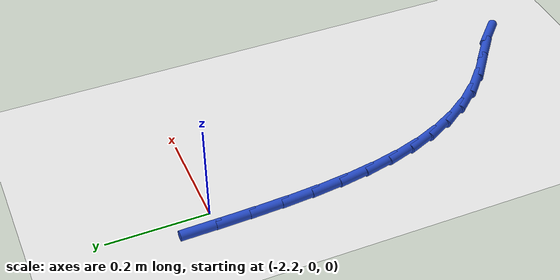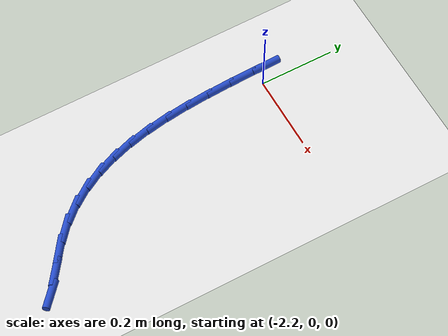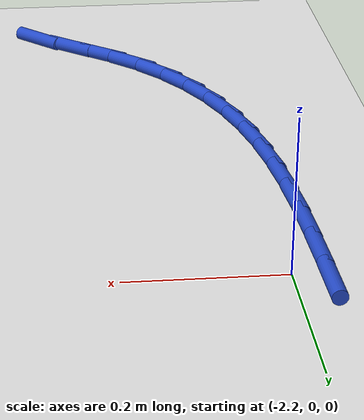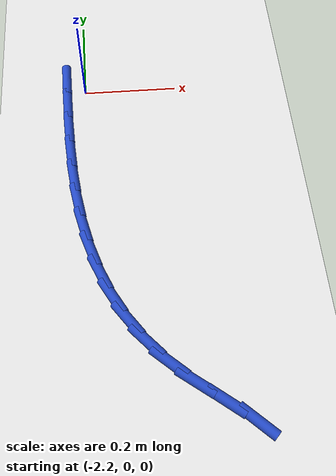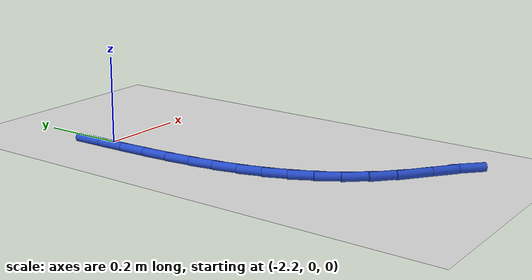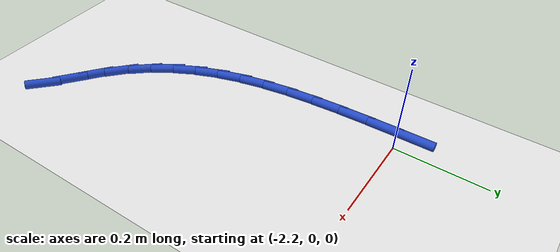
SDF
<sdf version="1.6">
 <world name="default">
  <model name="ground_plane">
   <static>1</static>
   <link name="link">
    <collision name="collision">
     <geometry><plane><normal>0 0 1</normal><size>100 100</size></plane></geometry>
     <surface><friction><ode><mu>100</mu><mu2>50</mu2></ode></friction></surface>
    </collision>
    <visual name="visual">
     <cast_shadows>0</cast_shadows>
     <geometry><plane><normal>0 0 1</normal><size>100 100</size></plane></geometry>
     <material>
      <script><uri>file://media/materials/scripts/gazebo.material</uri><name>Gazebo/WhiteGlow</name></script>
     </material>
    </visual>
   </link>
  </model>
  <model name="line">
   <link name="link_67">
    <pose>-2.2407978063257747 0.031171458628065446 0.01 0 1.57 -1.5496293288160106</pose>
    <collision name="collision">
     <geometry><cylinder><radius>0.01</radius><length>0.08</length></cylinder></geometry>
    </collision>
    <visual name="visual">
     <material>
      <script><name>Gazebo/Blue</name><uri>file://media/materials/scripts/gazebo.material</uri></script>
     </material>
     <geometry><cylinder><radius>0.01</radius><length>0.08</length></cylinder></geometry>
    </visual>
   </link>
   <link name="link_68">
    <pose>-2.2393458453060253 -0.037413806429780976 0.01 0 1.57 -1.5387033613197116</pose>
    <collision name="collision">
     <geometry><cylinder><radius>0.01</radius><length>0.08</length></cylinder></geometry>
    </collision>
    <visual name="visual">
     <material>
      <script><name>Gazebo/Blue</name><uri>file://media/materials/scripts/gazebo.material</uri></script>
     </material>
     <geometry><cylinder><radius>0.01</radius><length>0.08</length></cylinder></geometry>
    </visual>
   </link>
   <link name="link_69">
    <pose>-2.2372140390404995 -0.1038169665335308 0.01 0 1.57 -1.518980130691183</pose>
    <collision name="collision">
     <geometry><cylinder><radius>0.01</radius><length>0.08</length></cylinder></geometry>
    </collision>
    <visual name="visual">
     <material>
      <script><name>Gazebo/Blue</name><uri>file://media/materials/scripts/gazebo.material</uri></script>
     </material>
     <geometry><cylinder><radius>0.01</radius><length>0.08</length></cylinder></geometry>
    </visual>
   </link>
   <link name="link_70">
    <pose>-2.233886255575719 -0.16798232227393878 0.01 0 1.57 -1.4895188206596928</pose>
    <collision name="collision">
     <geometry><cylinder><radius>0.01</radius><length>0.08</length></cylinder></geometry>
    </collision>
    <visual name="visual">
     <material>
      <script><name>Gazebo/Blue</name><uri>file://media/materials/scripts/gazebo.material</uri></script>
     </material>
     <geometry><cylinder><radius>0.01</radius><length>0.08</length></cylinder></geometry>
    </visual>
   </link>
   <link name="link_71">
    <pose>-2.2288463629582034 -0.22985417424175691 0.01 0 1.57 -1.4492908041561579</pose>
    <collision name="collision">
     <geometry><cylinder><radius>0.01</radius><length>0.08</length></cylinder></geometry>
    </collision>
    <visual name="visual">
     <material>
      <script><name>Gazebo/Blue</name><uri>file://media/materials/scripts/gazebo.material</uri></script>
     </material>
     <geometry><cylinder><radius>0.01</radius><length>0.08</length></cylinder></geometry>
    </visual>
   </link>
   <link name="link_72">
    <pose>-2.221578229234473 -0.28937682302774026 0.01 0 1.57 -1.3972635664483946</pose>
    <collision name="collision">
     <geometry><cylinder><radius>0.01</radius><length>0.08</length></cylinder></geometry>
    </collision>
    <visual name="visual">
     <material>
      <script><name>Gazebo/Blue</name><uri>file://media/materials/scripts/gazebo.material</uri></script>
     </material>
     <geometry><cylinder><radius>0.01</radius><length>0.08</length></cylinder></geometry>
    </visual>
   </link>
   <link name="link_73">
    <pose>-2.2115657224510477 -0.34649456922264266 0.01 0 1.57 -1.332566531822757</pose>
    <collision name="collision">
     <geometry><cylinder><radius>0.01</radius><length>0.08</length></cylinder></geometry>
    </collision>
    <visual name="visual">
     <material>
      <script><name>Gazebo/Blue</name><uri>file://media/materials/scripts/gazebo.material</uri></script>
     </material>
     <geometry><cylinder><radius>0.01</radius><length>0.08</length></cylinder></geometry>
    </visual>
   </link>
   <link name="link_74">
    <pose>-2.1982927106544476 -0.401151713417218 0.01 0 1.57 -1.254763609702861</pose>
    <collision name="collision">
     <geometry><cylinder><radius>0.01</radius><length>0.08</length></cylinder></geometry>
    </collision>
    <visual name="visual">
     <material>
      <script><name>Gazebo/Blue</name><uri>file://media/materials/scripts/gazebo.material</uri></script>
     </material>
     <geometry><cylinder><radius>0.01</radius><length>0.08</length></cylinder></geometry>
    </visual>
   </link>
   <link name="link_75">
    <pose>-2.181243061891193 -0.4532925562022207 0.01 0 1.57 -1.164224779265622</pose>
    <collision name="collision">
     <geometry><cylinder><radius>0.01</radius><length>0.08</length></cylinder></geometry>
    </collision>
    <visual name="visual">
     <material>
      <script><name>Gazebo/Blue</name><uri>file://media/materials/scripts/gazebo.material</uri></script>
     </material>
     <geometry><cylinder><radius>0.01</radius><length>0.08</length></cylinder></geometry>
    </visual>
   </link>
   <link name="link_76">
    <pose>-2.159900644207805 -0.5028613981684038 0.01 0 1.57 -1.0625117664602284</pose>
    <collision name="collision">
     <geometry><cylinder><radius>0.01</radius><length>0.08</length></cylinder></geometry>
    </collision>
    <visual name="visual">
     <material>
      <script><name>Gazebo/Blue</name><uri>file://media/materials/scripts/gazebo.material</uri></script>
     </material>
     <geometry><cylinder><radius>0.01</radius><length>0.08</length></cylinder></geometry>
    </visual>
   </link>
   <link name="link_77">
    <pose>-2.133749325650802 -0.5498025399065214 0.01 0 1.57 -0.9525893882923403</pose>
    <collision name="collision">
     <geometry><cylinder><radius>0.01</radius><length>0.08</length></cylinder></geometry>
    </collision>
    <visual name="visual">
     <material>
      <script><name>Gazebo/Blue</name><uri>file://media/materials/scripts/gazebo.material</uri></script>
     </material>
     <geometry><cylinder><radius>0.01</radius><length>0.08</length></cylinder></geometry>
    </visual>
   </link>
   <link name="link_78">
    <pose>-2.1022729742667052 -0.5940602820073281 0.01 0 1.57 -0.8386371462607091</pose>
    <collision name="collision">
     <geometry><cylinder><radius>0.01</radius><length>0.08</length></cylinder></geometry>
    </collision>
    <visual name="visual">
     <material>
      <script><name>Gazebo/Blue</name><uri>file://media/materials/scripts/gazebo.material</uri></script>
     </material>
     <geometry><cylinder><radius>0.01</radius><length>0.08</length></cylinder></geometry>
    </visual>
   </link>
   <link name="link_79">
    <pose>-2.0649554581020353 -0.635578925061577 0.01 0 1.57 -0.7256413586075602</pose>
    <collision name="collision">
     <geometry><cylinder><radius>0.01</radius><length>0.08</length></cylinder></geometry>
    </collision>
    <visual name="visual">
     <material>
      <script><name>Gazebo/Blue</name><uri>file://media/materials/scripts/gazebo.material</uri></script>
     </material>
     <geometry><cylinder><radius>0.01</radius><length>0.08</length></cylinder></geometry>
    </visual>
   </link>
   <link name="link_80">
    <pose>-2.0212949833973584 -0.674310071035693 0.01 0 1.57 -0.6483646782180086</pose>
    <collision name="collision">
     <geometry><cylinder><radius>0.01</radius><length>0.08</length></cylinder></geometry>
    </collision>
    <visual name="visual">
     <material>
      <script><name>Gazebo/Blue</name><uri>file://media/materials/scripts/gazebo.material</uri></script>
     </material>
     <geometry><cylinder><radius>0.01</radius><length>0.08</length></cylinder></geometry>
    </visual>
   </link>
   <link name="link_81">
    <pose>-1.972659652618902 -0.7111575209502324 0.01 0 1.57 -0.6611099075309411</pose>
    <collision name="collision">
     <geometry><cylinder><radius>0.01</radius><length>0.08</length></cylinder></geometry>
    </collision>
    <visual name="visual">
     <material>
      <script><name>Gazebo/Blue</name><uri>file://media/materials/scripts/gazebo.material</uri></script>
     </material>
     <geometry><cylinder><radius>0.01</radius><length>0.08</length></cylinder></geometry>
    </visual>
   </link>
   <link name="link_82">
    <pose>-1.9241241446361042 -0.7489125594715097 0.01 0 1.57 -0.7519507592930177</pose>
    <collision name="collision">
     <geometry><cylinder><radius>0.01</radius><length>0.08</length></cylinder></geometry>
    </collision>
    <visual name="visual">
     <material>
      <script><name>Gazebo/Blue</name><uri>file://media/materials/scripts/gazebo.material</uri></script>
     </material>
     <geometry><cylinder><radius>0.01</radius><length>0.08</length></cylinder></geometry>
    </visual>
   </link>
  </model>
 </world>
</sdf>
